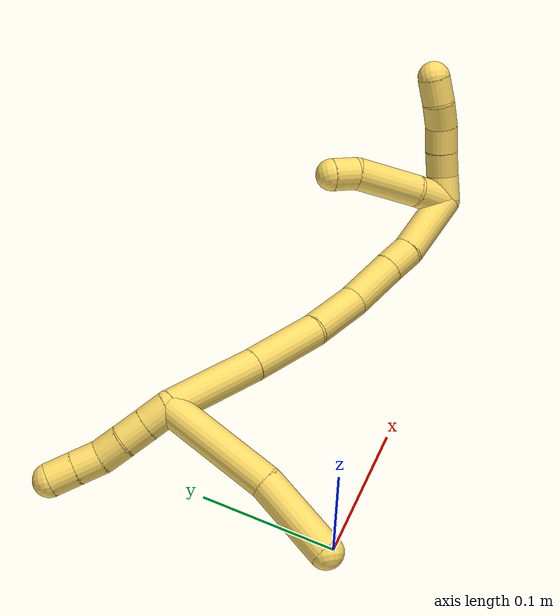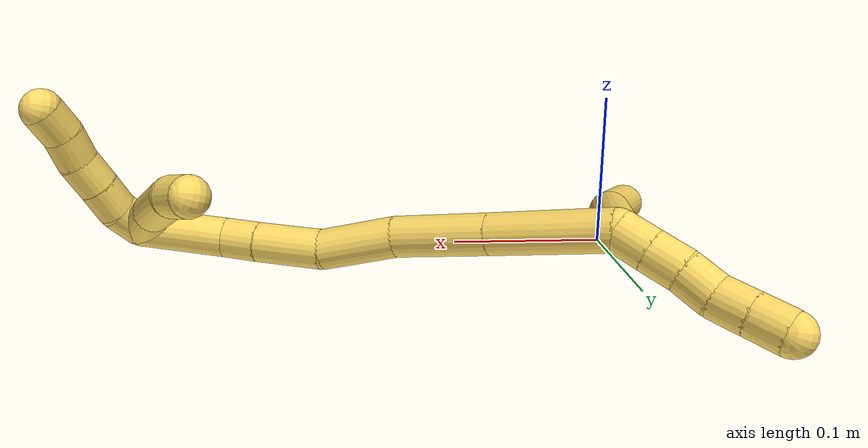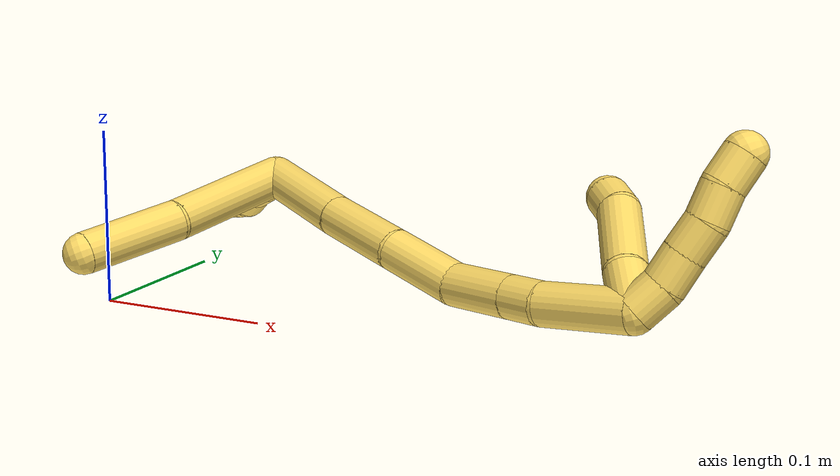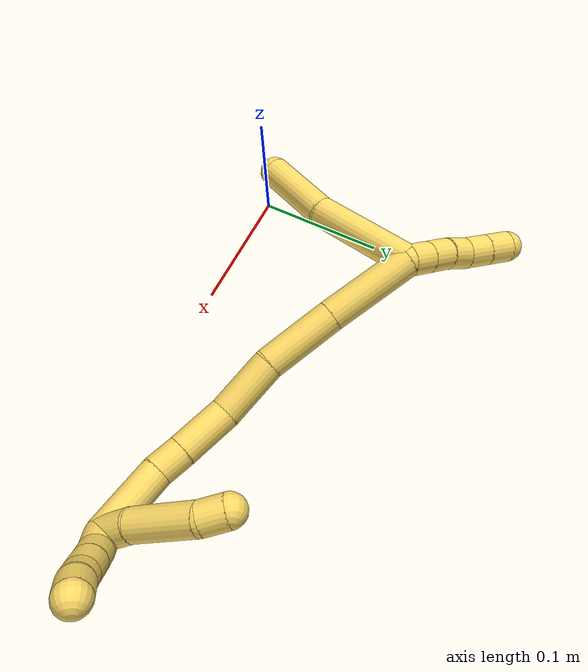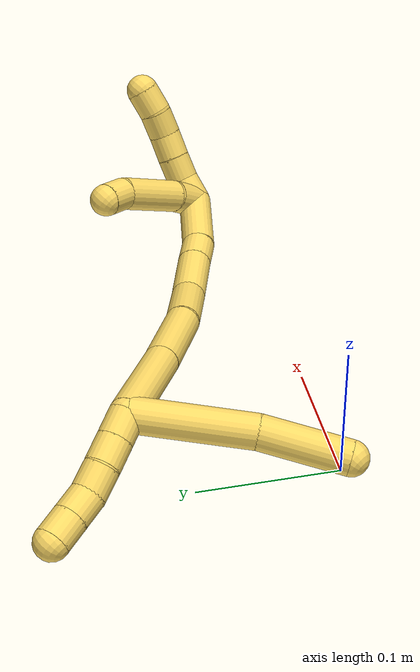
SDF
<sdf version="1.7">
 <world name="default">
  <model name="photoneo_s_sensor">
   <static>1</static>
   <pose>0 0 2 1.57079 1.57079 3.14159</pose>
   <link name="link">
    <inertial><mass>0.1</mass></inertial>
    <sensor name="sensor" type="depth">
     <update_rate>30</update_rate>
     <camera>
      <horizontal_fov>1.22</horizontal_fov>
      <image><width>1920</width><height>1200</height><format>B8G8R8</format></image>
      <clip><near>0.1</near><far>4</far></clip>
      <depth_camera><output>points</output></depth_camera>
     </camera>
     <plugin name="camera_plugin" filename="libgazebo_ros_depth_camera.so">
      <baseline>0.2</baseline>
      <alwaysOn>1</alwaysOn>
      <updateRate>0.0</updateRate>
      <cameraName>camera_ir</cameraName>
      <imageTopicName>/camera/color/image_raw</imageTopicName>
      <cameraInfoTopicName>/camera/color/camera_info</cameraInfoTopicName>
      <depthImageTopicName>/camera/depth/image_raw</depthImageTopicName>
      <depthImageCameraInfoTopicName>/camera/depth/camera_info</depthImageCameraInfoTopicName>
      <pointCloudTopicName>/camera/depth/points</pointCloudTopicName>
      <frameName>fr_optical</frameName>
      <pointCloudCutoff>0.1</pointCloudCutoff>
      <pointCloudCutoffMax>2.0</pointCloudCutoffMax>
      <distortionK1>0</distortionK1>
      <distortionK2>0</distortionK2>
      <distortionK3>0</distortionK3>
      <distortionT1>0</distortionT1>
      <distortionT2>0</distortionT2>
      <CxPrime>0</CxPrime>
      <Cx>0</Cx>
      <Cy>0</Cy>
      <focalLength>0</focalLength>
      <hackBaseline>0</hackBaseline>
     </plugin>
    </sensor>
   </link>
  </model>
  <model name="bin">
   <static>1</static>
   <link name="bottom">
    <collision name="collision-bottom">
     <pose>0 0 -0.01 0 -0 0</pose>
     <geometry><box><size>0.8 0.6 0.02</size></box></geometry>
     <surface>
      <friction><ode><mu>100</mu><mu2>100</mu2></ode></friction>
      <contact><collide_bitmask>65535</collide_bitmask></contact>
     </surface>
    </collision>
   </link>
   <link name="west_wall">
    <collision name="collision-west_wall">
     <pose>-0.41 0 0.1 0 -0 0</pose>
     <geometry><box><size>0.02 0.6 0.2</size></box></geometry>
     <surface>
      <friction><ode><mu>100</mu><mu2>100</mu2></ode></friction>
      <contact><collide_bitmask>65535</collide_bitmask></contact>
     </surface>
    </collision>
   </link>
   <link name="east_wall">
    <collision name="collision-east_wall">
     <pose>0.41 0 0.1 0 -0 0</pose>
     <geometry><box><size>0.02 0.6 0.2</size></box></geometry>
     <surface>
      <friction><ode><mu>100</mu><mu2>100</mu2></ode></friction>
      <contact><collide_bitmask>65535</collide_bitmask></contact>
     </surface>
    </collision>
   </link>
   <link name="south_wall">
    <collision name="collision-south_wall">
     <pose>0 -0.31 0.1 0 -0 0</pose>
     <geometry><box><size>0.8 0.02 0.2</size></box></geometry>
     <surface>
      <friction><ode><mu>100</mu><mu2>100</mu2></ode></friction>
      <contact><collide_bitmask>65535</collide_bitmask></contact>
     </surface>
    </collision>
   </link>
   <link name="north_wall">
    <collision name="collision-north_wall">
     <pose>0 0.31 0.1 0 -0 0</pose>
     <geometry><box><size>0.8 0.02 0.2</size></box></geometry>
     <surface>
      <friction><ode><mu>100</mu><mu2>100</mu2></ode></friction>
      <contact><collide_bitmask>65535</collide_bitmask></contact>
     </surface>
    </collision>
   </link>
  </model>
  <model name="5">
   <static>0</static>
   <link name="5">
    <collision name="collision-cylinder-e_1_2_8">
     <pose>0.025383 -0.012055 -0.03306 2.79194 0.6249 2.14084</pose>
     <geometry><cylinder><radius>0.0125</radius><length>0.086776</length></cylinder></geometry>
     <surface>
      <friction><ode><mu>1.16</mu><mu2>1.16</mu2><slip1>0</slip1><slip2>0</slip2></ode></friction>
      <contact><ode><kp>1e+06</kp><kd>1</kd><max_vel>0</max_vel><min_depth>0.001</min_depth></ode></contact>
     </surface>
    </collision>
    <visual name="visual-cylinder-e_1_2_8">
     <pose>0.025383 -0.012055 -0.03306 2.79194 0.6249 2.14084</pose>
     <geometry><cylinder><radius>0.0125</radius><length>0.086776</length></cylinder></geometry>
     <material><ambient>1 0.858824 0.4 1</ambient></material>
    </visual>
    <collision name="collision-cylinder-e_2_8_6">
     <pose>0.064166 -0.032214 -0.093579 2.8546 0.43777 1.9895</pose>
     <geometry><cylinder><radius>0.0125</radius><length>0.063224</length></cylinder></geometry>
     <surface>
      <friction><ode><mu>1.16</mu><mu2>1.16</mu2><slip1>0</slip1><slip2>0</slip2></ode></friction>
      <contact><ode><kp>1e+06</kp><kd>1</kd><max_vel>0</max_vel><min_depth>0.001</min_depth></ode></contact>
     </surface>
    </collision>
    <visual name="visual-cylinder-e_2_8_6">
     <pose>0.064166 -0.032214 -0.093579 2.8546 0.43777 1.9895</pose>
     <geometry><cylinder><radius>0.0125</radius><length>0.063224</length></cylinder></geometry>
     <material><ambient>1 0.858824 0.4 1</ambient></material>
    </visual>
    <collision name="collision-cylinder-e_1_2_9">
     <pose>-0.007591 0.005217 -0.003893 -2.21186 -0.862001 1.48412</pose>
     <geometry><cylinder><radius>0.0125</radius><length>0.02</length></cylinder></geometry>
     <surface>
      <friction><ode><mu>1.16</mu><mu2>1.16</mu2><slip1>0</slip1><slip2>0</slip2></ode></friction>
      <contact><ode><kp>1e+06</kp><kd>1</kd><max_vel>0</max_vel><min_depth>0.001</min_depth></ode></contact>
     </surface>
    </collision>
    <visual name="visual-cylinder-e_1_2_9">
     <pose>-0.007591 0.005217 -0.003893 -2.21186 -0.862001 1.48412</pose>
     <geometry><cylinder><radius>0.0125</radius><length>0.02</length></cylinder></geometry>
     <material><ambient>1 0.858824 0.4 1</ambient></material>
    </visual>
    <collision name="collision-cylinder-e_2_9_10">
     <pose>-0.022852 0.015557 -0.01165 -2.2171 -0.874045 1.50638</pose>
     <geometry><cylinder><radius>0.0125</radius><length>0.02</length></cylinder></geometry>
     <surface>
      <friction><ode><mu>1.16</mu><mu2>1.16</mu2><slip1>0</slip1><slip2>0</slip2></ode></friction>
      <contact><ode><kp>1e+06</kp><kd>1</kd><max_vel>0</max_vel><min_depth>0.001</min_depth></ode></contact>
     </surface>
    </collision>
    <visual name="visual-cylinder-e_2_9_10">
     <pose>-0.022852 0.015557 -0.01165 -2.2171 -0.874045 1.50638</pose>
     <geometry><cylinder><radius>0.0125</radius><length>0.02</length></cylinder></geometry>
     <material><ambient>1 0.858824 0.4 1</ambient></material>
    </visual>
    <collision name="collision-cylinder-e_3_10_11">
     <pose>-0.037569 0.02688 -0.018963 -2.0783 -0.782053 1.22274</pose>
     <geometry><cylinder><radius>0.0125</radius><length>0.02</length></cylinder></geometry>
     <surface>
      <friction><ode><mu>1.16</mu><mu2>1.16</mu2><slip1>0</slip1><slip2>0</slip2></ode></friction>
      <contact><ode><kp>1e+06</kp><kd>1</kd><max_vel>0</max_vel><min_depth>0.001</min_depth></ode></contact>
     </surface>
    </collision>
    <visual name="visual-cylinder-e_3_10_11">
     <pose>-0.037569 0.02688 -0.018963 -2.0783 -0.782053 1.22274</pose>
     <geometry><cylinder><radius>0.0125</radius><length>0.02</length></cylinder></geometry>
     <material><ambient>1 0.858824 0.4 1</ambient></material>
    </visual>
    <collision name="collision-cylinder-e_4_11_12">
     <pose>-0.053401 0.037326 -0.024603 -2.0474 -1.07264 1.54641</pose>
     <geometry><cylinder><radius>0.0125</radius><length>0.02</length></cylinder></geometry>
     <surface>
      <friction><ode><mu>1.16</mu><mu2>1.16</mu2><slip1>0</slip1><slip2>0</slip2></ode></friction>
      <contact><ode><kp>1e+06</kp><kd>1</kd><max_vel>0</max_vel><min_depth>0.001</min_depth></ode></contact>
     </surface>
    </collision>
    <visual name="visual-cylinder-e_4_11_12">
     <pose>-0.053401 0.037326 -0.024603 -2.0474 -1.07264 1.54641</pose>
     <geometry><cylinder><radius>0.0125</radius><length>0.02</length></cylinder></geometry>
     <material><ambient>1 0.858824 0.4 1</ambient></material>
    </visual>
    <collision name="collision-cylinder-e_5_12_5">
     <pose>-0.070966 0.045823 -0.028992 -2.04774 -1.07181 1.54584</pose>
     <geometry><cylinder><radius>0.0125</radius><length>0.02</length></cylinder></geometry>
     <surface>
      <friction><ode><mu>1.16</mu><mu2>1.16</mu2><slip1>0</slip1><slip2>0</slip2></ode></friction>
      <contact><ode><kp>1e+06</kp><kd>1</kd><max_vel>0</max_vel><min_depth>0.001</min_depth></ode></contact>
     </surface>
    </collision>
    <visual name="visual-cylinder-e_5_12_5">
     <pose>-0.070966 0.045823 -0.028992 -2.04774 -1.07181 1.54584</pose>
     <geometry><cylinder><radius>0.0125</radius><length>0.02</length></cylinder></geometry>
     <material><ambient>1 0.858824 0.4 1</ambient></material>
    </visual>
    <collision name="collision-cylinder-e_1_2_13">
     <pose>0.034358 0.001359 0.012594 -0.107475 1.21759 -0.074961</pose>
     <geometry><cylinder><radius>0.0125</radius><length>0.073238</length></cylinder></geometry>
     <surface>
      <friction><ode><mu>1.16</mu><mu2>1.16</mu2><slip1>0</slip1><slip2>0</slip2></ode></friction>
      <contact><ode><kp>1e+06</kp><kd>1</kd><max_vel>0</max_vel><min_depth>0.001</min_depth></ode></contact>
     </surface>
    </collision>
    <visual name="visual-cylinder-e_1_2_13">
     <pose>0.034358 0.001359 0.012594 -0.107475 1.21759 -0.074961</pose>
     <geometry><cylinder><radius>0.0125</radius><length>0.073238</length></cylinder></geometry>
     <material><ambient>1 0.858824 0.4 1</ambient></material>
    </visual>
    <collision name="collision-cylinder-e_2_13_14">
     <pose>0.095739 0.003865 0.036549 -0.100623 1.17095 -0.066747</pose>
     <geometry><cylinder><radius>0.0125</radius><length>0.058673</length></cylinder></geometry>
     <surface>
      <friction><ode><mu>1.16</mu><mu2>1.16</mu2><slip1>0</slip1><slip2>0</slip2></ode></friction>
      <contact><ode><kp>1e+06</kp><kd>1</kd><max_vel>0</max_vel><min_depth>0.001</min_depth></ode></contact>
     </surface>
    </collision>
    <visual name="visual-cylinder-e_2_13_14">
     <pose>0.095739 0.003865 0.036549 -0.100623 1.17095 -0.066747</pose>
     <geometry><cylinder><radius>0.0125</radius><length>0.058673</length></cylinder></geometry>
     <material><ambient>1 0.858824 0.4 1</ambient></material>
    </visual>
    <collision name="collision-cylinder-e_3_14_15">
     <pose>0.143388 0.009721 0.059285 -0.392545 1.03273 -0.224822</pose>
     <geometry><cylinder><radius>0.0125</radius><length>0.048041</length></cylinder></geometry>
     <surface>
      <friction><ode><mu>1.16</mu><mu2>1.16</mu2><slip1>0</slip1><slip2>0</slip2></ode></friction>
      <contact><ode><kp>1e+06</kp><kd>1</kd><max_vel>0</max_vel><min_depth>0.001</min_depth></ode></contact>
     </surface>
    </collision>
    <visual name="visual-cylinder-e_3_14_15">
     <pose>0.143388 0.009721 0.059285 -0.392545 1.03273 -0.224822</pose>
     <geometry><cylinder><radius>0.0125</radius><length>0.048041</length></cylinder></geometry>
     <material><ambient>1 0.858824 0.4 1</ambient></material>
    </visual>
    <collision name="collision-cylinder-e_4_15_16">
     <pose>0.181279 0.013065 0.082481 0.114888 0.967266 0.060392</pose>
     <geometry><cylinder><radius>0.0125</radius><length>0.04194</length></cylinder></geometry>
     <surface>
      <friction><ode><mu>1.16</mu><mu2>1.16</mu2><slip1>0</slip1><slip2>0</slip2></ode></friction>
      <contact><ode><kp>1e+06</kp><kd>1</kd><max_vel>0</max_vel><min_depth>0.001</min_depth></ode></contact>
     </surface>
    </collision>
    <visual name="visual-cylinder-e_4_15_16">
     <pose>0.181279 0.013065 0.082481 0.114888 0.967266 0.060392</pose>
     <geometry><cylinder><radius>0.0125</radius><length>0.04194</length></cylinder></geometry>
     <material><ambient>1 0.858824 0.4 1</ambient></material>
    </visual>
    <collision name="collision-cylinder-e_5_16_17">
     <pose>0.207974 0.010717 0.100406 0.15995 0.99064 0.086542</pose>
     <geometry><cylinder><radius>0.0125</radius><length>0.022549</length></cylinder></geometry>
     <surface>
      <friction><ode><mu>1.16</mu><mu2>1.16</mu2><slip1>0</slip1><slip2>0</slip2></ode></friction>
      <contact><ode><kp>1e+06</kp><kd>1</kd><max_vel>0</max_vel><min_depth>0.001</min_depth></ode></contact>
     </surface>
    </collision>
    <visual name="visual-cylinder-e_5_16_17">
     <pose>0.207974 0.010717 0.100406 0.15995 0.99064 0.086542</pose>
     <geometry><cylinder><radius>0.0125</radius><length>0.022549</length></cylinder></geometry>
     <material><ambient>1 0.858824 0.4 1</ambient></material>
    </visual>
    <collision name="collision-cylinder-e_6_17_1">
     <pose>0.237297 0.00809 0.125828 0.084799 0.798165 0.035778</pose>
     <geometry><cylinder><radius>0.0125</radius><length>0.055561</length></cylinder></geometry>
     <surface>
      <friction><ode><mu>1.16</mu><mu2>1.16</mu2><slip1>0</slip1><slip2>0</slip2></ode></friction>
      <contact><ode><kp>1e+06</kp><kd>1</kd><max_vel>0</max_vel><min_depth>0.001</min_depth></ode></contact>
     </surface>
    </collision>
    <visual name="visual-cylinder-e_6_17_1">
     <pose>0.237297 0.00809 0.125828 0.084799 0.798165 0.035778</pose>
     <geometry><cylinder><radius>0.0125</radius><length>0.055561</length></cylinder></geometry>
     <material><ambient>1 0.858824 0.4 1</ambient></material>
    </visual>
    <collision name="collision-cylinder-e_1_1_18">
     <pose>0.256855 0.002457 0.154313 0.410796 -0.033415 -0.006962</pose>
     <geometry><cylinder><radius>0.0125</radius><length>0.02</length></cylinder></geometry>
     <surface>
      <friction><ode><mu>1.16</mu><mu2>1.16</mu2><slip1>0</slip1><slip2>0</slip2></ode></friction>
      <contact><ode><kp>1e+06</kp><kd>1</kd><max_vel>0</max_vel><min_depth>0.001</min_depth></ode></contact>
     </surface>
    </collision>
    <visual name="visual-cylinder-e_1_1_18">
     <pose>0.256855 0.002457 0.154313 0.410796 -0.033415 -0.006962</pose>
     <geometry><cylinder><radius>0.0125</radius><length>0.02</length></cylinder></geometry>
     <material><ambient>1 0.858824 0.4 1</ambient></material>
    </visual>
    <collision name="collision-cylinder-e_2_18_19">
     <pose>0.255023 -0.007601 0.171283 0.66059 -0.150386 -0.051646</pose>
     <geometry><cylinder><radius>0.0125</radius><length>0.02</length></cylinder></geometry>
     <surface>
      <friction><ode><mu>1.16</mu><mu2>1.16</mu2><slip1>0</slip1><slip2>0</slip2></ode></friction>
      <contact><ode><kp>1e+06</kp><kd>1</kd><max_vel>0</max_vel><min_depth>0.001</min_depth></ode></contact>
     </surface>
    </collision>
    <visual name="visual-cylinder-e_2_18_19">
     <pose>0.255023 -0.007601 0.171283 0.66059 -0.150386 -0.051646</pose>
     <geometry><cylinder><radius>0.0125</radius><length>0.02</length></cylinder></geometry>
     <material><ambient>1 0.858824 0.4 1</ambient></material>
    </visual>
    <collision name="collision-cylinder-e_3_19_20">
     <pose>0.252525 -0.019728 0.186981 0.654954 -0.10011 -0.034033</pose>
     <geometry><cylinder><radius>0.0125</radius><length>0.02</length></cylinder></geometry>
     <surface>
      <friction><ode><mu>1.16</mu><mu2>1.16</mu2><slip1>0</slip1><slip2>0</slip2></ode></friction>
      <contact><ode><kp>1e+06</kp><kd>1</kd><max_vel>0</max_vel><min_depth>0.001</min_depth></ode></contact>
     </surface>
    </collision>
    <visual name="visual-cylinder-e_3_19_20">
     <pose>0.252525 -0.019728 0.186981 0.654954 -0.10011 -0.034033</pose>
     <geometry><cylinder><radius>0.0125</radius><length>0.02</length></cylinder></geometry>
     <material><ambient>1 0.858824 0.4 1</ambient></material>
    </visual>
    <collision name="collision-cylinder-e_4_20_21">
     <pose>0.248701 -0.03245 0.201776 0.767488 -0.286386 -0.116297</pose>
     <geometry><cylinder><radius>0.0125</radius><length>0.02</length></cylinder></geometry>
     <surface>
      <friction><ode><mu>1.16</mu><mu2>1.16</mu2><slip1>0</slip1><slip2>0</slip2></ode></friction>
      <contact><ode><kp>1e+06</kp><kd>1</kd><max_vel>0</max_vel><min_depth>0.001</min_depth></ode></contact>
     </surface>
    </collision>
    <visual name="visual-cylinder-e_4_20_21">
     <pose>0.248701 -0.03245 0.201776 0.767488 -0.286386 -0.116297</pose>
     <geometry><cylinder><radius>0.0125</radius><length>0.02</length></cylinder></geometry>
     <material><ambient>1 0.858824 0.4 1</ambient></material>
    </visual>
    <collision name="collision-cylinder-e_5_21_4">
     <pose>0.243339 -0.044274 0.216858 0.563145 -0.256556 -0.074586</pose>
     <geometry><cylinder><radius>0.0125</radius><length>0.02</length></cylinder></geometry>
     <surface>
      <friction><ode><mu>1.16</mu><mu2>1.16</mu2><slip1>0</slip1><slip2>0</slip2></ode></friction>
      <contact><ode><kp>1e+06</kp><kd>1</kd><max_vel>0</max_vel><min_depth>0.001</min_depth></ode></contact>
     </surface>
    </collision>
    <visual name="visual-cylinder-e_5_21_4">
     <pose>0.243339 -0.044274 0.216858 0.563145 -0.256556 -0.074586</pose>
     <geometry><cylinder><radius>0.0125</radius><length>0.02</length></cylinder></geometry>
     <material><ambient>1 0.858824 0.4 1</ambient></material>
    </visual>
    <collision name="collision-cylinder-e_1_1_22">
     <pose>0.244309 0.003082 0.148518 0.78509 -1.21673 -0.561503</pose>
     <geometry><cylinder><radius>0.0125</radius><length>0.027465</length></cylinder></geometry>
     <surface>
      <friction><ode><mu>1.16</mu><mu2>1.16</mu2><slip1>0</slip1><slip2>0</slip2></ode></friction>
      <contact><ode><kp>1e+06</kp><kd>1</kd><max_vel>0</max_vel><min_depth>0.001</min_depth></ode></contact>
     </surface>
    </collision>
    <visual name="visual-cylinder-e_1_1_22">
     <pose>0.244309 0.003082 0.148518 0.78509 -1.21673 -0.561503</pose>
     <geometry><cylinder><radius>0.0125</radius><length>0.027465</length></cylinder></geometry>
     <material><ambient>1 0.858824 0.4 1</ambient></material>
    </visual>
    <collision name="collision-cylinder-e_2_22_23">
     <pose>0.206495 -0.001853 0.159805 0.19566 -1.25763 -0.142518</pose>
     <geometry><cylinder><radius>0.0125</radius><length>0.052416</length></cylinder></geometry>
     <surface>
      <friction><ode><mu>1.16</mu><mu2>1.16</mu2><slip1>0</slip1><slip2>0</slip2></ode></friction>
      <contact><ode><kp>1e+06</kp><kd>1</kd><max_vel>0</max_vel><min_depth>0.001</min_depth></ode></contact>
     </surface>
    </collision>
    <visual name="visual-cylinder-e_2_22_23">
     <pose>0.206495 -0.001853 0.159805 0.19566 -1.25763 -0.142518</pose>
     <geometry><cylinder><radius>0.0125</radius><length>0.052416</length></cylinder></geometry>
     <material><ambient>1 0.858824 0.4 1</ambient></material>
    </visual>
    <collision name="collision-cylinder-e_3_23_3">
     <pose>0.171536 -0.002634 0.167958 -1.28398 -1.48888 1.20631</pose>
     <geometry><cylinder><radius>0.0125</radius><length>0.020119</length></cylinder></geometry>
     <surface>
      <friction><ode><mu>1.16</mu><mu2>1.16</mu2><slip1>0</slip1><slip2>0</slip2></ode></friction>
      <contact><ode><kp>1e+06</kp><kd>1</kd><max_vel>0</max_vel><min_depth>0.001</min_depth></ode></contact>
     </surface>
    </collision>
    <visual name="visual-cylinder-e_3_23_3">
     <pose>0.171536 -0.002634 0.167958 -1.28398 -1.48888 1.20631</pose>
     <geometry><cylinder><radius>0.0125</radius><length>0.020119</length></cylinder></geometry>
     <material><ambient>1 0.858824 0.4 1</ambient></material>
    </visual>
    <collision name="collision-sphere-3">
     <pose>0.16151 -0.001844 0.168191 0 -0 0</pose>
     <geometry><sphere><radius>0.0125</radius></sphere></geometry>
     <surface>
      <friction><ode><mu>1.16</mu><mu2>1.16</mu2><slip1>0</slip1><slip2>0</slip2></ode></friction>
      <contact><ode><kp>1e+06</kp><kd>1</kd><max_vel>0</max_vel><min_depth>0.001</min_depth></ode></contact>
     </surface>
    </collision>
    <visual name="visual-sphere-3">
     <pose>0.16151 -0.001844 0.168191 0 -0 0</pose>
     <geometry><sphere><radius>0.0125</radius></sphere></geometry>
     <material><ambient>1 0.858824 0.4 1</ambient></material>
    </visual>
    <collision name="collision-sphere-23">
     <pose>0.181561 -0.003423 0.167725 0 -0 0</pose>
     <geometry><sphere><radius>0.0125</radius></sphere></geometry>
     <surface>
      <friction><ode><mu>1.16</mu><mu2>1.16</mu2><slip1>0</slip1><slip2>0</slip2></ode></friction>
      <contact><ode><kp>1e+06</kp><kd>1</kd><max_vel>0</max_vel><min_depth>0.001</min_depth></ode></contact>
     </surface>
    </collision>
    <visual name="visual-sphere-23">
     <pose>0.181561 -0.003423 0.167725 0 -0 0</pose>
     <geometry><sphere><radius>0.0125</radius></sphere></geometry>
     <material><ambient>1 0.858824 0.4 1</ambient></material>
    </visual>
    <collision name="collision-sphere-22">
     <pose>0.231428 -0.000284 0.151885 0 -0 0</pose>
     <geometry><sphere><radius>0.0125</radius></sphere></geometry>
     <surface>
      <friction><ode><mu>1.16</mu><mu2>1.16</mu2><slip1>0</slip1><slip2>0</slip2></ode></friction>
      <contact><ode><kp>1e+06</kp><kd>1</kd><max_vel>0</max_vel><min_depth>0.001</min_depth></ode></contact>
     </surface>
    </collision>
    <visual name="visual-sphere-22">
     <pose>0.231428 -0.000284 0.151885 0 -0 0</pose>
     <geometry><sphere><radius>0.0125</radius></sphere></geometry>
     <material><ambient>1 0.858824 0.4 1</ambient></material>
    </visual>
    <collision name="collision-sphere-4">
     <pose>0.240801 -0.049438 0.225037 0 -0 0</pose>
     <geometry><sphere><radius>0.0125</radius></sphere></geometry>
     <surface>
      <friction><ode><mu>1.16</mu><mu2>1.16</mu2><slip1>0</slip1><slip2>0</slip2></ode></friction>
      <contact><ode><kp>1e+06</kp><kd>1</kd><max_vel>0</max_vel><min_depth>0.001</min_depth></ode></contact>
     </surface>
    </collision>
    <visual name="visual-sphere-4">
     <pose>0.240801 -0.049438 0.225037 0 -0 0</pose>
     <geometry><sphere><radius>0.0125</radius></sphere></geometry>
     <material><ambient>1 0.858824 0.4 1</ambient></material>
    </visual>
    <collision name="collision-sphere-21">
     <pose>0.245876 -0.03911 0.208679 0 -0 0</pose>
     <geometry><sphere><radius>0.0125</radius></sphere></geometry>
     <surface>
      <friction><ode><mu>1.16</mu><mu2>1.16</mu2><slip1>0</slip1><slip2>0</slip2></ode></friction>
      <contact><ode><kp>1e+06</kp><kd>1</kd><max_vel>0</max_vel><min_depth>0.001</min_depth></ode></contact>
     </surface>
    </collision>
    <visual name="visual-sphere-21">
     <pose>0.245876 -0.03911 0.208679 0 -0 0</pose>
     <geometry><sphere><radius>0.0125</radius></sphere></geometry>
     <material><ambient>1 0.858824 0.4 1</ambient></material>
    </visual>
    <collision name="collision-sphere-20">
     <pose>0.251526 -0.025789 0.194872 0 -0 0</pose>
     <geometry><sphere><radius>0.0125</radius></sphere></geometry>
     <surface>
      <friction><ode><mu>1.16</mu><mu2>1.16</mu2><slip1>0</slip1><slip2>0</slip2></ode></friction>
      <contact><ode><kp>1e+06</kp><kd>1</kd><max_vel>0</max_vel><min_depth>0.001</min_depth></ode></contact>
     </surface>
    </collision>
    <visual name="visual-sphere-20">
     <pose>0.251526 -0.025789 0.194872 0 -0 0</pose>
     <geometry><sphere><radius>0.0125</radius></sphere></geometry>
     <material><ambient>1 0.858824 0.4 1</ambient></material>
    </visual>
    <collision name="collision-sphere-11">
     <pose>-0.044616 0.033081 -0.022411 0 -0 0</pose>
     <geometry><sphere><radius>0.0125</radius></sphere></geometry>
     <surface>
      <friction><ode><mu>1.16</mu><mu2>1.16</mu2><slip1>0</slip1><slip2>0</slip2></ode></friction>
      <contact><ode><kp>1e+06</kp><kd>1</kd><max_vel>0</max_vel><min_depth>0.001</min_depth></ode></contact>
     </surface>
    </collision>
    <visual name="visual-sphere-11">
     <pose>-0.044616 0.033081 -0.022411 0 -0 0</pose>
     <geometry><sphere><radius>0.0125</radius></sphere></geometry>
     <material><ambient>1 0.858824 0.4 1</ambient></material>
    </visual>
    <collision name="collision-sphere-10">
     <pose>-0.030522 0.02068 -0.015515 0 -0 0</pose>
     <geometry><sphere><radius>0.0125</radius></sphere></geometry>
     <surface>
      <friction><ode><mu>1.16</mu><mu2>1.16</mu2><slip1>0</slip1><slip2>0</slip2></ode></friction>
      <contact><ode><kp>1e+06</kp><kd>1</kd><max_vel>0</max_vel><min_depth>0.001</min_depth></ode></contact>
     </surface>
    </collision>
    <visual name="visual-sphere-10">
     <pose>-0.030522 0.02068 -0.015515 0 -0 0</pose>
     <geometry><sphere><radius>0.0125</radius></sphere></geometry>
     <material><ambient>1 0.858824 0.4 1</ambient></material>
    </visual>
    <collision name="collision-sphere-6">
     <pose>0.077567 -0.040318 -0.121039 0 -0 0</pose>
     <geometry><sphere><radius>0.0125</radius></sphere></geometry>
     <surface>
      <friction><ode><mu>1.16</mu><mu2>1.16</mu2><slip1>0</slip1><slip2>0</slip2></ode></friction>
      <contact><ode><kp>1e+06</kp><kd>1</kd><max_vel>0</max_vel><min_depth>0.001</min_depth></ode></contact>
     </surface>
    </collision>
    <visual name="visual-sphere-6">
     <pose>0.077567 -0.040318 -0.121039 0 -0 0</pose>
     <geometry><sphere><radius>0.0125</radius></sphere></geometry>
     <material><ambient>1 0.858824 0.4 1</ambient></material>
    </visual>
    <collision name="collision-sphere-9">
     <pose>-0.015183 0.010434 -0.007786 0 -0 0</pose>
     <geometry><sphere><radius>0.0125</radius></sphere></geometry>
     <surface>
      <friction><ode><mu>1.16</mu><mu2>1.16</mu2><slip1>0</slip1><slip2>0</slip2></ode></friction>
      <contact><ode><kp>1e+06</kp><kd>1</kd><max_vel>0</max_vel><min_depth>0.001</min_depth></ode></contact>
     </surface>
    </collision>
    <visual name="visual-sphere-9">
     <pose>-0.015183 0.010434 -0.007786 0 -0 0</pose>
     <geometry><sphere><radius>0.0125</radius></sphere></geometry>
     <material><ambient>1 0.858824 0.4 1</ambient></material>
    </visual>
    <collision name="collision-sphere-2">
     <geometry><sphere><radius>0.0125</radius></sphere></geometry>
     <surface>
      <friction><ode><mu>1.16</mu><mu2>1.16</mu2><slip1>0</slip1><slip2>0</slip2></ode></friction>
      <contact><ode><kp>1e+06</kp><kd>1</kd><max_vel>0</max_vel><min_depth>0.001</min_depth></ode></contact>
     </surface>
    </collision>
    <visual name="visual-sphere-2">
     <geometry><sphere><radius>0.0125</radius></sphere></geometry>
     <material><ambient>1 0.858824 0.4 1</ambient></material>
    </visual>
    <collision name="collision-sphere-19">
     <pose>0.253525 -0.013668 0.17909 0 -0 0</pose>
     <geometry><sphere><radius>0.0125</radius></sphere></geometry>
     <surface>
      <friction><ode><mu>1.16</mu><mu2>1.16</mu2><slip1>0</slip1><slip2>0</slip2></ode></friction>
      <contact><ode><kp>1e+06</kp><kd>1</kd><max_vel>0</max_vel><min_depth>0.001</min_depth></ode></contact>
     </surface>
    </collision>
    <visual name="visual-sphere-19">
     <pose>0.253525 -0.013668 0.17909 0 -0 0</pose>
     <geometry><sphere><radius>0.0125</radius></sphere></geometry>
     <material><ambient>1 0.858824 0.4 1</ambient></material>
    </visual>
    <collision name="collision-sphere-8">
     <pose>0.050766 -0.024109 -0.066119 0 -0 0</pose>
     <geometry><sphere><radius>0.0125</radius></sphere></geometry>
     <surface>
      <friction><ode><mu>1.16</mu><mu2>1.16</mu2><slip1>0</slip1><slip2>0</slip2></ode></friction>
      <contact><ode><kp>1e+06</kp><kd>1</kd><max_vel>0</max_vel><min_depth>0.001</min_depth></ode></contact>
     </surface>
    </collision>
    <visual name="visual-sphere-8">
     <pose>0.050766 -0.024109 -0.066119 0 -0 0</pose>
     <geometry><sphere><radius>0.0125</radius></sphere></geometry>
     <material><ambient>1 0.858824 0.4 1</ambient></material>
    </visual>
    <collision name="collision-sphere-12">
     <pose>-0.062186 0.041572 -0.026795 0 -0 0</pose>
     <geometry><sphere><radius>0.0125</radius></sphere></geometry>
     <surface>
      <friction><ode><mu>1.16</mu><mu2>1.16</mu2><slip1>0</slip1><slip2>0</slip2></ode></friction>
      <contact><ode><kp>1e+06</kp><kd>1</kd><max_vel>0</max_vel><min_depth>0.001</min_depth></ode></contact>
     </surface>
    </collision>
    <visual name="visual-sphere-12">
     <pose>-0.062186 0.041572 -0.026795 0 -0 0</pose>
     <geometry><sphere><radius>0.0125</radius></sphere></geometry>
     <material><ambient>1 0.858824 0.4 1</ambient></material>
    </visual>
    <collision name="collision-sphere-5">
     <pose>-0.079747 0.050075 -0.031189 0 -0 0</pose>
     <geometry><sphere><radius>0.0125</radius></sphere></geometry>
     <surface>
      <friction><ode><mu>1.16</mu><mu2>1.16</mu2><slip1>0</slip1><slip2>0</slip2></ode></friction>
      <contact><ode><kp>1e+06</kp><kd>1</kd><max_vel>0</max_vel><min_depth>0.001</min_depth></ode></contact>
     </surface>
    </collision>
    <visual name="visual-sphere-5">
     <pose>-0.079747 0.050075 -0.031189 0 -0 0</pose>
     <geometry><sphere><radius>0.0125</radius></sphere></geometry>
     <material><ambient>1 0.858824 0.4 1</ambient></material>
    </visual>
    <collision name="collision-sphere-13">
     <pose>0.068717 0.002717 0.025187 0 -0 0</pose>
     <geometry><sphere><radius>0.0125</radius></sphere></geometry>
     <surface>
      <friction><ode><mu>1.16</mu><mu2>1.16</mu2><slip1>0</slip1><slip2>0</slip2></ode></friction>
      <contact><ode><kp>1e+06</kp><kd>1</kd><max_vel>0</max_vel><min_depth>0.001</min_depth></ode></contact>
     </surface>
    </collision>
    <visual name="visual-sphere-13">
     <pose>0.068717 0.002717 0.025187 0 -0 0</pose>
     <geometry><sphere><radius>0.0125</radius></sphere></geometry>
     <material><ambient>1 0.858824 0.4 1</ambient></material>
    </visual>
    <collision name="collision-sphere-14">
     <pose>0.122761 0.005012 0.047911 0 -0 0</pose>
     <geometry><sphere><radius>0.0125</radius></sphere></geometry>
     <surface>
      <friction><ode><mu>1.16</mu><mu2>1.16</mu2><slip1>0</slip1><slip2>0</slip2></ode></friction>
      <contact><ode><kp>1e+06</kp><kd>1</kd><max_vel>0</max_vel><min_depth>0.001</min_depth></ode></contact>
     </surface>
    </collision>
    <visual name="visual-sphere-14">
     <pose>0.122761 0.005012 0.047911 0 -0 0</pose>
     <geometry><sphere><radius>0.0125</radius></sphere></geometry>
     <material><ambient>1 0.858824 0.4 1</ambient></material>
    </visual>
    <collision name="collision-sphere-15">
     <pose>0.164014 0.01443 0.070658 0 -0 0</pose>
     <geometry><sphere><radius>0.0125</radius></sphere></geometry>
     <surface>
      <friction><ode><mu>1.16</mu><mu2>1.16</mu2><slip1>0</slip1><slip2>0</slip2></ode></friction>
      <contact><ode><kp>1e+06</kp><kd>1</kd><max_vel>0</max_vel><min_depth>0.001</min_depth></ode></contact>
     </surface>
    </collision>
    <visual name="visual-sphere-15">
     <pose>0.164014 0.01443 0.070658 0 -0 0</pose>
     <geometry><sphere><radius>0.0125</radius></sphere></geometry>
     <material><ambient>1 0.858824 0.4 1</ambient></material>
    </visual>
    <collision name="collision-sphere-16">
     <pose>0.198545 0.011701 0.094304 0 -0 0</pose>
     <geometry><sphere><radius>0.0125</radius></sphere></geometry>
     <surface>
      <friction><ode><mu>1.16</mu><mu2>1.16</mu2><slip1>0</slip1><slip2>0</slip2></ode></friction>
      <contact><ode><kp>1e+06</kp><kd>1</kd><max_vel>0</max_vel><min_depth>0.001</min_depth></ode></contact>
     </surface>
    </collision>
    <visual name="visual-sphere-16">
     <pose>0.198545 0.011701 0.094304 0 -0 0</pose>
     <geometry><sphere><radius>0.0125</radius></sphere></geometry>
     <material><ambient>1 0.858824 0.4 1</ambient></material>
    </visual>
    <collision name="collision-sphere-17">
     <pose>0.217404 0.009732 0.106507 0 -0 0</pose>
     <geometry><sphere><radius>0.0125</radius></sphere></geometry>
     <surface>
      <friction><ode><mu>1.16</mu><mu2>1.16</mu2><slip1>0</slip1><slip2>0</slip2></ode></friction>
      <contact><ode><kp>1e+06</kp><kd>1</kd><max_vel>0</max_vel><min_depth>0.001</min_depth></ode></contact>
     </surface>
    </collision>
    <visual name="visual-sphere-17">
     <pose>0.217404 0.009732 0.106507 0 -0 0</pose>
     <geometry><sphere><radius>0.0125</radius></sphere></geometry>
     <material><ambient>1 0.858824 0.4 1</ambient></material>
    </visual>
    <collision name="collision-sphere-1">
     <pose>0.257189 0.006448 0.14515 0 -0 0</pose>
     <geometry><sphere><radius>0.0125</radius></sphere></geometry>
     <surface>
      <friction><ode><mu>1.16</mu><mu2>1.16</mu2><slip1>0</slip1><slip2>0</slip2></ode></friction>
      <contact><ode><kp>1e+06</kp><kd>1</kd><max_vel>0</max_vel><min_depth>0.001</min_depth></ode></contact>
     </surface>
    </collision>
    <visual name="visual-sphere-1">
     <pose>0.257189 0.006448 0.14515 0 -0 0</pose>
     <geometry><sphere><radius>0.0125</radius></sphere></geometry>
     <material><ambient>1 0.858824 0.4 1</ambient></material>
    </visual>
    <collision name="collision-sphere-18">
     <pose>0.256521 -0.001535 0.163476 0 -0 0</pose>
     <geometry><sphere><radius>0.0125</radius></sphere></geometry>
     <surface>
      <friction><ode><mu>1.16</mu><mu2>1.16</mu2><slip1>0</slip1><slip2>0</slip2></ode></friction>
      <contact><ode><kp>1e+06</kp><kd>1</kd><max_vel>0</max_vel><min_depth>0.001</min_depth></ode></contact>
     </surface>
    </collision>
    <visual name="visual-sphere-18">
     <pose>0.256521 -0.001535 0.163476 0 -0 0</pose>
     <geometry><sphere><radius>0.0125</radius></sphere></geometry>
     <material><ambient>1 0.858824 0.4 1</ambient></material>
    </visual>
    <inertial>
     <pose>0.118699 -0.000709 0.056721 0 -0 0</pose>
     <mass>0.75</mass>
     <inertia>
      <ixx>9.2e-05</ixx>
      <ixy>0</ixy>
      <ixz>0</ixz>
      <iyy>0.000227</iyy>
      <iyz>0</iyz>
      <izz>-7.1e-05</izz>
     </inertia>
    </inertial>
   </link>
   <pose>0.030016 0.138923 0.050536 -1.22106 0.266333 -0.847623</pose>
  </model>
 </world>
</sdf>
